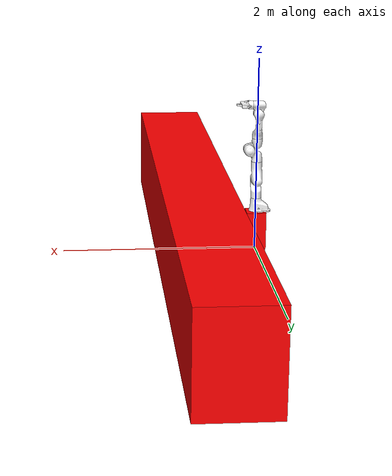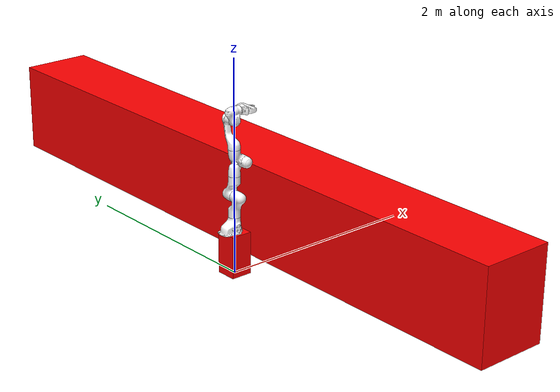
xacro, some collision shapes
<?xml version="1.0"?>

<robot xmlns:xacro="http://wiki.ros.org/xacro" name="panda">

  <!-- ===== ARGUMENTS ===== -->

  <!-- CELL LAYOUT:  -->
  <xacro:arg name="cell_layout_1" default="false"/>
  <xacro:arg name="cell_layout_2" default="false"/>

  <!-- END-EFFECTOR:  -->
  <xacro:arg name="EE_no" default="false"/>
  <xacro:property name="EE_no" value="$(arg EE_no)"/>

  <!-- Include XACRO-MACRO file of the PANDA ROBOT: -->
  <xacro:include filename="$(find panda_ros2_gazebo)/urdf/panda_macro.urdf.xacro"/>
  <xacro:panda
    prefix=""
    EE_no="${EE_no}"
  />

  <!-- Gazebo world link: -->
  <link name="world"/>

    <link name='panda_base'>
      <inertial>
        <origin xyz="0 0 0" rpy="0 0 0"/>
        <mass value="100"/>
        <inertia ixx="0.01"  ixy="0"  ixz="0" iyy="0.01" iyz="0" izz="0.01" />
      </inertial>
      <collision name='collision'>
        <origin xyz="0 0 0" rpy=" 0 0 0"/>
        <geometry>
          <box size = "0.2 0.2 0.4"/>
        </geometry>
      </collision>
      <visual name='chassis_visual'>
        <origin xyz="0 0 0" rpy=" 0 0 0"/>
        <geometry>
          <box size = "0.2 0.2 0.4"/>
        </geometry>
        <material name="red">
          <color rgba="1 0 0 1"/>
        </material>
      </visual>
    </link>
    <gazebo reference="panda_base">
      <material>Gazebo/Red</material>
    </gazebo>

    <joint name="world_joint" type="fixed">
      <parent link="world" />
      <child link = "panda_base" />
      <origin xyz="0.0 0.0 0.2" rpy="0.0 0.0 0.0" />
    </joint>
    <joint name="panda_joint" type="fixed">
      <parent link="panda_base" />
      <child link = "panda_link0" />
      <origin xyz="0.0 0.0 0.205" rpy="0.0 0.0 0.0" />
    </joint>

     <link name='kitchen'>
      <inertial>
        <origin xyz="0 0 0" rpy="0 0 0"/>
        <mass value="100"/>
        <inertia ixx="0.01"  ixy="0"  ixz="0" iyy="0.01" iyz="0" izz="0.01" />
      </inertial>
      <collision name='collision'>
        <origin xyz="0 0 0" rpy=" 0 0 0"/>
        <geometry>
          <box size = "6.54 0.70 0.9"/>
        </geometry>
      </collision>
      <visual name='chassis_visual'>
        <origin xyz="0 0 -0.45" rpy=" 0 0 0"/>
        <geometry>
           <mesh filename="file://$(find panda_ros2_gazebo)/meshes/kitchen_mesh.dae"/>
        </geometry>
        <material name="black">
          <color rgba="1 0 0 1"/>
        </material>
      </visual>
    </link>
    <joint name="kitchen_world" type="fixed">
      <parent link="world" />
      <child link = "kitchen" />
      <origin xyz="0.7 0.650 0.45" rpy="0.0 0.0 -1.57" />
    </joint>

</robot>

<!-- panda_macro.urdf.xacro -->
<robot xmlns:xacro="http://wiki.ros.org/xacro">

  <!-- XACRO-MACRO of PANDA ROBOT: -->
  <xacro:macro name="panda" params="prefix EE_no">

    <!-- Load PANDA ROBOT TRANSMISSION file: -->
    <xacro:include filename="$(find panda_ros2_gazebo)/urdf/panda_transmission.xacro" />
    <xacro:panda_transmission
      prefix=""
    />

    <!-- Load PANDA ROBOT ROS2_CONTROL file: -->
    <xacro:include filename="$(find panda_ros2_gazebo)/urdf/panda_ros2control.xacro" />
    <xacro:panda_ros2control
      prefix=""
      EE_no="${EE_no}"
    />

    <!-- ***** PANDA ROBOT .urdf SERIAL CHAIN ***** -->

    <!-- panda_link0 -->
    <link name="panda_link0">
      <inertial>
        <mass value="2.92"/>
        <origin rpy="0 0 0" xyz="-0.025566 -2.88e-05 0.057332"/>
        <inertia ixx="0.00782229414331" ixy="-1.56191622996e-05" ixz="-0.00126005738123" iyy="0.0109027971813" iyz="1.08233858202e-05" izz="0.0102355503949"/>
      </inertial>
      <visual>
        <origin rpy="0 0 0" xyz="0 0 0"/>
        <geometry>
          <mesh filename="file://$(find panda_ros2_gazebo)/meshes/visual/link0.dae"/>
        </geometry>
        <material name="">
          <color rgba="1 1 1 1"/>
        </material>
      </visual>
      <collision>
        <origin rpy="0 0 0" xyz="0 0 0"/>
        <geometry>
          <mesh filename="file://$(find panda_ros2_gazebo)/meshes/collision/link0.stl"/>
        </geometry>
      </collision>
    </link>

    <!-- panda_link1 -->
    <link name="panda_link1">
      <inertial>
        <mass value="2.74"/>
        <origin rpy="0 0 0" xyz="0 -0.0324958 -0.0675818"/>
        <inertia ixx="0.0180416958283" ixy="0.0" ixz="0.0" iyy="0.0159136071891" iyz="0.0046758424612" izz="0.00620690827127"/>
      </inertial>
      <visual>
        <origin rpy="0 0 0" xyz="0 0 0"/>
        <geometry>
          <mesh filename="file://$(find panda_ros2_gazebo)/meshes/visual/link1.dae"/>
        </geometry>
        <material name="">
          <color rgba="1 1 1 1"/>
        </material>
      </visual>
      <collision>
        <origin rpy="0 0 0" xyz="0 0 0"/>
        <geometry>
          <mesh filename="file://$(find panda_ros2_gazebo)/meshes/collision/link1.stl"/>
        </geometry>
      </collision>
    </link>
    <!-- panda_joint1 -->
    <joint name="panda_joint1" type="revolute">
      <origin rpy="0 0 0" xyz="0 0 0.333"/>
      <parent link="panda_link0"/>
      <child link="panda_link1"/>
      <axis xyz="0 0 1"/>
      <limit effort="87" lower="-2.8973" upper="2.8973" velocity="2.1750"/>
    </joint>

    <!-- panda_link2 -->
    <link name="panda_link2">
      <inertial>
        <mass value="2.74"/>
        <origin rpy="0 0 0" xyz="0 -0.06861 0.0322285"/>
        <inertia ixx="0.0182856182281" ixy="0.0" ixz="0.0" iyy="0.00621358421175" iyz="-0.00472844221905" izz="0.0161514346309"/>
      </inertial>
      <visual>
        <origin rpy="0 0 0" xyz="0 0 0"/>
        <geometry>
          <mesh filename="file://$(find panda_ros2_gazebo)/meshes/visual/link2.dae"/>
        </geometry>
        <material name="">
          <color rgba="1 1 1 1"/>
        </material>
      </visual>
      <collision>
        <origin rpy="0 0 0" xyz="0 0 0"/>
        <geometry>
          <mesh filename="file://$(find panda_ros2_gazebo)/meshes/collision/link2.stl"/>
        </geometry>
      </collision>
    </link>
    <!-- panda_joint2 -->
    <joint name="panda_joint2" type="revolute">
      <origin rpy="-1.57079632679 0 0" xyz="0 0 0"/>
      <parent link="panda_link1"/>
      <child link="panda_link2"/>
      <axis xyz="0 0 1"/>
      <limit effort="87" lower="-1.7628" upper="1.7628" velocity="2.1750"/>
    </joint>

    <!-- panda_link3 -->
    <link name="panda_link3">
      <inertial>
        <mass value="2.38"/>
        <origin rpy="0 0 0" xyz="0.0469893 0.0316374 -0.031704"/>
        <inertia ixx="0.00771376630908" ixy="-0.00248490625138" ixz="-0.00332147581033" iyy="0.00989108008727" iyz="-0.00217796151484" izz="0.00811723558464"/>
      </inertial>
      <visual>
        <origin rpy="0 0 0" xyz="0 0 0"/>
        <geometry>
          <mesh filename="file://$(find panda_ros2_gazebo)/meshes/visual/link3.dae"/>
        </geometry>
        <material name="">
          <color rgba="1 1 1 1"/>
        </material>
      </visual>
      <collision>
        <origin rpy="0 0 0" xyz="0 0 0"/>
        <geometry>
          <mesh filename="file://$(find panda_ros2_gazebo)/meshes/collision/link3.stl"/>
        </geometry>
      </collision>
    </link>
    <!-- panda_joint3 -->
    <joint name="panda_joint3" type="revolute">
      <origin rpy="1.57079632679 0 0" xyz="0 -0.316 0"/>
      <parent link="panda_link2"/>
      <child link="panda_link3"/>
      <axis xyz="0 0 1"/>
      <limit effort="87" lower="-2.8973" upper="2.8973" velocity="2.1750"/>
    </joint>

    <!-- panda_link4-->
    <link name="panda_link4">
      <inertial>
        <mass value="2.38"/>
        <origin rpy="0 0 0" xyz="-0.0360446 0.0336853 0.031882"/>
        <inertia ixx="0.00799663881132" ixy="0.00347095570217" ixz="-0.00241222942995" iyy="0.00825390705278" iyz="0.00235774044121" izz="0.0102515004345"/>
      </inertial>
      <visual>
        <origin rpy="0 0 0" xyz="0 0 0"/>
        <geometry>
          <mesh filename="file://$(find panda_ros2_gazebo)/meshes/visual/link4.dae"/>
        </geometry>
        <material name="">
          <color rgba="1 1 1 1"/>
        </material>
      </visual>
      <collision>
        <origin rpy="0 0 0" xyz="0 0 0"/>
        <geometry>
          <mesh filename="file://$(find panda_ros2_gazebo)/meshes/collision/link4.stl"/>
        </geometry>
      </collision>
    </link>
    <!-- panda_joint4 -->
    <joint name="panda_joint4" type="revolute">
      <origin rpy="1.57079632679 0 0" xyz="0.0825 0 0"/>
      <parent link="panda_link3"/>
      <child link="panda_link4"/>
      <axis xyz="0 0 1"/>
      <limit effort="87" lower="-3.0718" upper="0.0698" velocity="2.1750"/>
      <!-- upper should be -0.0698, but that brakes simulation when initial position for this joint is 0.0 -->
    </joint>

    <!-- panda_link5 -->
    <link name="panda_link5">
      <inertial>
        <mass value="2.74"/>
        <origin rpy="0 0 0" xyz="0 0.0610427 -0.104176"/>
        <inertia ixx="0.030371374513" ixy="6.50283587108e-07" ixz="-1.05129179916e-05" iyy="0.0288752887402" iyz="-0.00775653445787" izz="0.00444134056164"/>
      </inertial>
      <visual>
        <origin rpy="0 0 0" xyz="0 0 0"/>
        <geometry>
          <mesh filename="file://$(find panda_ros2_gazebo)/meshes/visual/link5.dae"/>
        </geometry>
        <material name="">
          <color rgba="1 1 1 1"/>
        </material>
      </visual>
      <collision>
        <origin rpy="0 0 0" xyz="0 0 0"/>
        <geometry>
          <mesh filename="file://$(find panda_ros2_gazebo)/meshes/collision/link5.stl"/>
        </geometry>
      </collision>
    </link>
    <!-- panda_joint5 -->
    <joint name="panda_joint5" type="revolute">
      <origin rpy="-1.57079632679 0 0" xyz="-0.0825 0.384 0"/>
      <parent link="panda_link4"/>
      <child link="panda_link5"/>
      <axis xyz="0 0 1"/>
      <limit effort="12" lower="-2.8973" upper="2.8973" velocity="2.6100"/>
    </joint>

    <!-- panda_link6 -->
    <link name="panda_link6">
      <inertial>
        <mass value="1.55"/>
        <origin rpy="0 0 0" xyz="0.0510509 0.009108 0.0106343"/>
        <inertia ixx="0.00303336450376" ixy="-0.000437276865508" ixz="0.000629257294877" iyy="0.00404479911567" iyz="0.000130472021025" izz="0.00558234286039"/>
      </inertial>
      <visual>
        <origin rpy="0 0 0" xyz="0 0 0"/>
        <geometry>
          <mesh filename="file://$(find panda_ros2_gazebo)/meshes/visual/link6.dae"/>
        </geometry>
        <material name="">
          <color rgba="1 1 1 1"/>
        </material>
      </visual>
      <collision>
        <origin rpy="0 0 0" xyz="0 0 0"/>
        <geometry>
          <mesh filename="file://$(find panda_ros2_gazebo)/meshes/collision/link6.stl"/>
        </geometry>
      </collision>
    </link>
    <!-- panda_joint6 -->
    <joint name="panda_joint6" type="revolute">
      <origin rpy="1.57079632679 -1.57079632679 0" xyz="0 0 0"/> <!-- rpy="1.57079632679 0 0" -->
      <parent link="panda_link5"/>
      <child link="panda_link6"/>
      <axis xyz="0 0 1"/>
      <limit effort="12" lower="-0.0175" upper="3.7525" velocity="2.6100"/>
    </joint>

    <!-- panda_link7 -->
    <link name="panda_link7">
      <inertial>
        <mass value="0.54"/>
        <origin rpy="0 0 0" xyz="0.0109695 0.0107965 0.0650411"/>
        <inertia ixx="0.000888868887021" ixy="-0.00012239074652" ixz="3.98699829666e-05" iyy="0.000888001373233" iyz="-9.33825115206e-05" izz="0.0007176834609"/>
      </inertial>
      <visual>
        <origin rpy="0 0 0" xyz="0 0 0"/>
        <geometry>
          <mesh filename="file://$(find panda_ros2_gazebo)/meshes/visual/link7.dae"/>
        </geometry>
        <material name="">
          <color rgba="1 1 1 1"/>
        </material>
      </visual>
      <collision>
        <origin rpy="0 0 0" xyz="0 0 0"/>
        <geometry>
          <mesh filename="file://$(find panda_ros2_gazebo)/meshes/collision/link7.stl"/>
        </geometry>
      </collision>
    </link>
    <!-- panda_joint7 -->
    <joint name="panda_joint7" type="revolute">
      <origin rpy="1.57079632679 -0.7854 0" xyz="0.088 0 0"/> <!-- rpy="1.57079632679 0 0" -->
      <parent link="panda_link6"/>
      <child link="panda_link7"/>
      <axis xyz="0 0 1"/>
      <limit effort="12" lower="-3.15" upper="3.15" velocity="2.6100"/>
    </joint>

    <!-- panda_link8 -->
    <link name="panda_link8"/>
    <!-- panda_joint8 -->
    <joint name="panda_joint8" type="fixed">
      <origin rpy="0 0 0" xyz="0 0 0.107"/>
      <parent link="panda_link7"/>
      <child link="panda_link8"/>
      <axis xyz="0 0 0"/>
    </joint>

    <!-- panda_hand -->
    <joint name="panda_hand_joint" type="fixed">
      <parent link="panda_link8"/>
      <child link="panda_hand"/>
      <origin rpy="0 0 -0.785398163397" xyz="0 0 0"/>
    </joint>
    <link name="panda_hand">
      <inertial>
        <mass value="0.73"/>
        <origin rpy="0 0 0" xyz="0 0.0015244 0.0275912"/>
        <inertia ixx="0.00278560230025" ixy="0.0" ixz="0.0" iyy="0.000400033405336" iyz="0.0" izz="0.00256378041832"/>
      </inertial>
      <visual>
        <origin rpy="0 0 0" xyz="0 0 0"/>
        <geometry>
          <mesh filename="file://$(find panda_ros2_gazebo)/meshes/visual/hand.dae"/>
        </geometry>
        <material name="">
          <color rgba="1 1 1 1"/>
        </material>
      </visual>
      <collision>
        <origin rpy="0 0 0" xyz="0 0 0"/>
        <geometry>
          <mesh filename="file://$(find panda_ros2_gazebo)/meshes/collision/hand.stl"/>
        </geometry>
      </collision>
    </link>

    <!-- panda_leftfinger -->
    <link name="panda_leftfinger">
      <inertial>
        <mass value="0.1"/>
        <origin rpy="0 0 0" xyz="0 0.0145644 0.0227941"/>
        <inertia ixx="3.01220925051e-05" ixy="0.0" ixz="0.0" iyy="2.95873808038e-05" iyz="0.0" izz="6.95125211657e-06"/>
      </inertial>
      <visual>
        <origin rpy="0 0 0" xyz="0 0 0"/>
        <geometry>
          <mesh filename="file://$(find panda_ros2_gazebo)/meshes/visual/finger.dae"/>
        </geometry>
        <material name="">
          <color rgba="1 1 1 1"/>
        </material>
      </visual>
      <collision>
        <origin rpy="0 0 0" xyz="0 0 0"/>
        <geometry>
          <mesh filename="file://$(find panda_ros2_gazebo)/meshes/collision/finger.stl"/>
        </geometry>
      </collision>
    </link>
    <!-- panda_rightfinger -->
    <link name="panda_rightfinger">
      <inertial>
        <mass value="0.1"/>
        <origin rpy="0 0 3.14159265359" xyz="0 0.0145644 0.0227941"/>
        <inertia ixx="3.01220925051e-05" ixy="0.0" ixz="0.0" iyy="2.95873808038e-05" iyz="0.0" izz="6.95125211657e-06"/>
      </inertial>
      <visual>
        <origin rpy="0 0 3.14159265359" xyz="0 0 0"/>
        <geometry>
          <mesh filename="file://$(find panda_ros2_gazebo)/meshes/visual/finger.dae"/>
        </geometry>
        <material name="">
          <color rgba="1 1 1 1"/>
        </material>
      </visual>
      <collision>
        <origin rpy="0 0 3.14159265359" xyz="0 0 0"/>
        <geometry>
          <mesh filename="file://$(find panda_ros2_gazebo)/meshes/collision/finger.stl"/>
        </geometry>
      </collision>
    </link>
    <joint name="panda_finger_joint1" type="prismatic">
      <parent link="panda_hand"/>
      <child link="panda_leftfinger"/>
      <origin rpy="0 0 0" xyz="0 0 0.0584"/>
      <axis xyz="0 1 0"/>
      <limit effort="20" lower="-0.001" upper="0.04" velocity="0.3"/>
    </joint>
    <joint name="panda_finger_joint2" type="prismatic">
      <parent link="panda_hand"/>
      <child link="panda_rightfinger"/>
      <origin rpy="0 0 0" xyz="0 0 0.0584"/>
      <axis xyz="0 -1 0"/>
      <limit effort="20" lower="-0.001" upper="0.04" velocity="0.3"/>
    </joint>

    <!-- End-Effector frame -->
    <link name="end_effector_frame">
      <inertial>
        <!-- Dummy inertial parameters to avoid link lumping-->
        <mass value="0.01"/>
        <inertia ixx="0.0001" ixy="0.0" ixz="0.0" iyy="0.0001" iyz="0.0" izz="0.0001"/>
      </inertial>
    </link>
    <joint name="end_effector_frame_fixed_joint" type="fixed">
      <origin rpy="3.14159 -1.57079 -0.785398163397" xyz="0 0 0.21"/>
      <parent link="panda_link7"/>
      <child link="end_effector_frame"/>
    </joint>

  </xacro:macro>
</robot>
